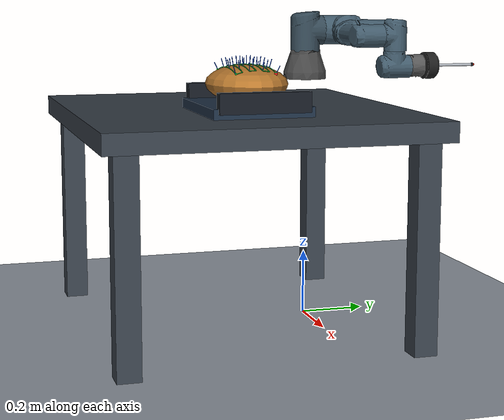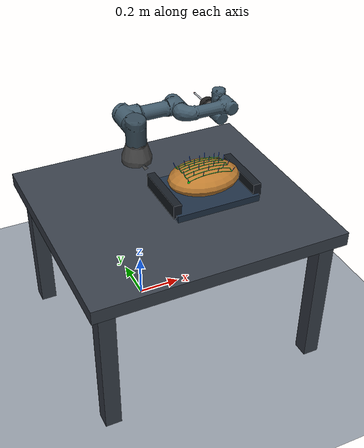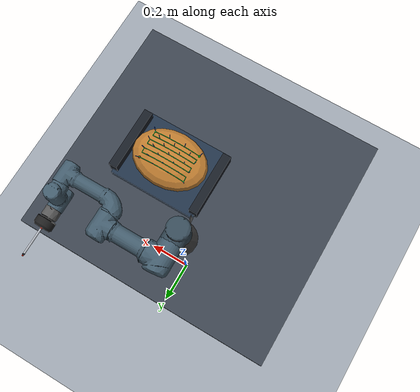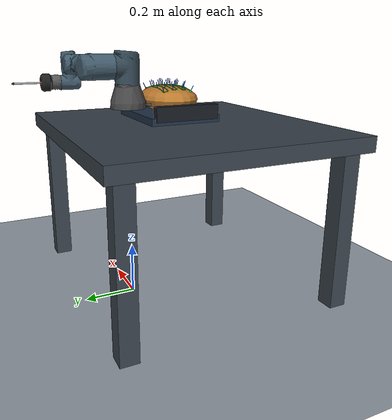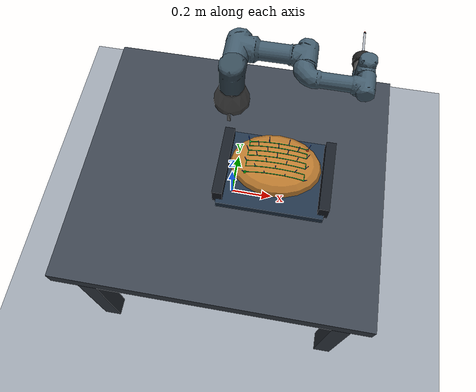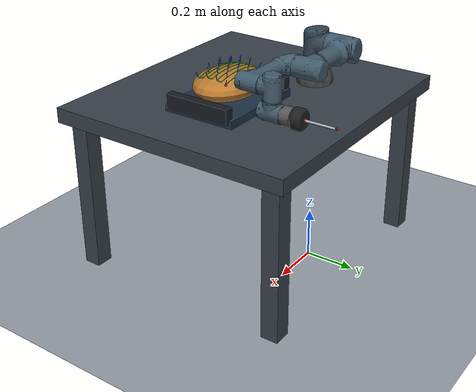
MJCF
<?xml version='1.0' encoding='utf-8'?>
<mujoco model="ur3_ft300_inspection_scan_preview">
  <!-- Green path: raster scan. Blue markers: outward surface normals. -->
  <compiler angle="radian" autolimits="true" />
  <option timestep="0.001" integrator="implicitfast" gravity="0 0 -9.81" />
  <asset>
    <mesh name="base" content_type="model/stl" file="/home/ubuntu/ur3_ft300_ws/src/ur_description/meshes/ur3/collision/base.stl" />
    <mesh name="shoulder" content_type="model/stl" file="/home/ubuntu/ur3_ft300_ws/src/ur_description/meshes/ur3/collision/shoulder.stl" />
    <mesh name="upperarm" content_type="model/stl" file="/home/ubuntu/ur3_ft300_ws/src/ur_description/meshes/ur3/collision/upperarm.stl" />
    <mesh name="forearm" content_type="model/stl" file="/home/ubuntu/ur3_ft300_ws/src/ur_description/meshes/ur3/collision/forearm.stl" />
    <mesh name="wrist1" content_type="model/stl" file="/home/ubuntu/ur3_ft300_ws/src/ur_description/meshes/ur3/collision/wrist1.stl" />
    <mesh name="wrist2" content_type="model/stl" file="/home/ubuntu/ur3_ft300_ws/src/ur_description/meshes/ur3/collision/wrist2.stl" />
    <mesh name="wrist3" content_type="model/stl" file="/home/ubuntu/ur3_ft300_ws/src/ur_description/meshes/ur3/collision/wrist3.stl" />
    <mesh name="robotiq_ft300" content_type="model/stl" file="/home/ubuntu/ur3_ft300_ws/install/robotiq_ft_sensor_description/share/robotiq_ft_sensor_description/meshes/collision/robotiq_ft300.STL" />
    <mesh name="robotiq_ft300-G-062-COUPLING_G-50-4M6-1D6_20181119" content_type="model/stl" file="/home/ubuntu/ur3_ft300_ws/install/robotiq_ft_sensor_description/share/robotiq_ft_sensor_description/meshes/collision/mountings/robotiq_ft300-G-062-COUPLING_G-50-4M6-1D6_20181119.STL" />
    <material name="ur_base_gray" rgba="0.2688 0.2688 0.2688 1" specular="0.25" shininess="0.35" />
    <material name="ur_shoulder_blue" rgba="0.200704 0.278016 0.32768 1" specular="0.25" shininess="0.35" />
    <material name="ur_blue" rgba="0.25088 0.34752 0.4096 1" specular="0.3" shininess="0.4" />
    <material name="ur_metal_gray" rgba="0.335872 0.335872 0.335872 1" specular="0.35" shininess="0.45" />
    <material name="inspection_probe_metal" rgba="0.70 0.72 0.75 1" specular="0.55" shininess="0.65" />
    <material name="inspection_tip_dark" rgba="0.10 0.12 0.14 1" specular="0.35" shininess="0.45" />
    <texture name="workcell_skybox" type="skybox" builtin="gradient" rgb1="0.92 0.95 1.00" rgb2="0.45 0.56 0.72" width="512" height="3072" />
    <material name="floor_mat" rgba="0.58 0.61 0.65 1" specular="0.10" shininess="0.15" />
    <material name="table_mat" rgba="0.22 0.25 0.29 1" specular="0.35" shininess="0.45" />
    <material name="fixture_mat" rgba="0.12 0.19 0.27 1" specular="0.45" shininess="0.55" />
    <material name="workpiece_mat" rgba="0.72 0.47 0.18 1" specular="0.45" shininess="0.50" />
    <material name="clamp_mat" rgba="0.09 0.11 0.14 1" specular="0.25" shininess="0.30" />
  </asset>
  <worldbody>
    <body name="base_link" pos="0 0 0.76">
      <body name="base_link_inertia" quat="0 0 0 1">
        <inertial pos="0 0 0" quat="0.5 0.5 -0.5 0.5" mass="2" diaginertia="0.005625 0.00305317 0.00305317" />
        <geom quat="0 0 0 1" type="mesh" mesh="base" friction="0.8 0.01 0.001" material="ur_base_gray" />
        <body name="shoulder_link" pos="0 0 0.1519">
          <inertial pos="0 0 -0.02" mass="2" diaginertia="0.00809317 0.00809317 0.005625" />
          <joint name="shoulder_pan_joint" range="-6.28319 6.28319" actuatorfrcrange="-56 56" damping="0.15" armature="0.01" />
          <geom quat="0 0 0 1" type="mesh" mesh="shoulder" friction="0.8 0.01 0.001" material="ur_shoulder_blue" />
          <body name="upper_arm_link" quat="0.707107 0.707107 0 0">
            <inertial pos="-0.11365 0 0.1157" mass="3.42" diaginertia="0.0217285 0.0217285 0.00961875" />
            <joint name="shoulder_lift_joint" range="-6.28319 6.28319" actuatorfrcrange="-56 56" damping="0.15" armature="0.01" />
            <geom pos="0 0 0.1198" quat="0.5 0.5 -0.5 -0.5" type="mesh" mesh="upperarm" friction="0.8 0.01 0.001" material="ur_blue" />
            <body name="forearm_link" pos="-0.24365 0 0">
              <inertial pos="-0.16325 0 0.0238" mass="1.26" diaginertia="0.00654681 0.00654681 0.00354375" />
              <joint name="elbow_joint" range="-3.14159 3.14159" actuatorfrcrange="-28 28" damping="0.15" armature="0.01" />
              <geom pos="0 0 0.0275" quat="0.5 0.5 -0.5 -0.5" type="mesh" mesh="forearm" friction="0.8 0.01 0.001" material="ur_blue" />
              <body name="wrist_1_link" pos="-0.21325 0 0.11235">
                <inertial pos="0 -0.01 0" quat="0.5 0.5 -0.5 0.5" mass="0.8" diaginertia="0.00225 0.00161064 0.00161064" />
                <joint name="wrist_1_joint" range="-6.28319 6.28319" actuatorfrcrange="-12 12" damping="0.08" armature="0.001" />
                <geom pos="0 0 -0.085" quat="0.707107 0.707107 0 0" type="mesh" mesh="wrist1" friction="0.8 0.01 0.001" material="ur_blue" />
                <body name="wrist_2_link" pos="0 -0.08535 -1.75056e-11" quat="0.707107 0.707107 0 0">
                  <inertial pos="0 0.01 0" quat="0.5 0.5 -0.5 0.5" mass="0.8" diaginertia="0.00225 0.00157217 0.00157217" />
                  <joint name="wrist_2_joint" range="-6.28319 6.28319" actuatorfrcrange="-12 12" damping="0.08" armature="0.001" />
                  <geom pos="0 0 -0.083" quat="1 0 0 0" type="mesh" mesh="wrist2" friction="0.8 0.01 0.001" material="ur_blue" />
                  <body name="wrist_3_link" pos="0 0.0819 -1.6798e-11" quat="0.707107 -0.707107 0 0">
                    <inertial pos="0 0 -0.02" quat="0.5 0.5 -0.5 0.5" mass="0.35" diaginertia="0.0001792 0.000136267 0.000136267" />
                    <joint name="wrist_3_joint" actuatorfrcrange="-12 12" damping="0.08" armature="0.001" />
                    <geom pos="0 -0.002 -0.082" quat="0.707107 0.707107 0 0" type="mesh" mesh="wrist3" friction="0.8 0.01 0.001" material="ur_metal_gray" />
                    <body name="ft_frame" quat="0 1 0 0" />
                    <body name="flange" quat="0.5 -0.5 -0.5 -0.5">
                      <body name="tool0" quat="0.5 0.5 0.5 0.5">
                        <body name="ft300_mounting_plate">
                          <geom type="mesh" rgba="0.12 0.12 0.12 1" mesh="robotiq_ft300-G-062-COUPLING_G-50-4M6-1D6_20181119" friction="0.8 0.01 0.001" />
                          <body name="ft300_sensor" pos="0 0 0.0415" quat="0 0 1 0">
                            <inertial pos="0 0 -0.017" quat="0.709662 -0.000475378 -0.0158879 0.704363" mass="0.3" diaginertia="0.000265022 0.000262023 0.000218955" />
                            <geom type="mesh" rgba="0.12 0.12 0.12 1" mesh="robotiq_ft300" friction="0.8 0.01 0.001" />
                            <body name="robotiq_ft_frame_id" quat="0 0.707107 0.707107 0">
                              <site name="ft300_site" pos="0 0 0" size="0.006" rgba="1 0.2 0.1 0.8" />
                              <body name="inspection_probe">
                                <inertial pos="0 0 0.067083333333333342" mass="0.12" diaginertia="0.0001659125 0.0001659125 9.9999999999999995e-07" />
                                <geom name="inspection_probe_shaft" type="cylinder" size="0.0040000000000000001 0.057499999999999996" pos="0 0 0.057499999999999996" material="inspection_probe_metal" contype="0" conaffinity="0" />
                                <geom name="inspection_probe_tip_collision" type="sphere" size="0.0050000000000000001" pos="0 0 0.11499999999999999" material="inspection_tip_dark" friction="0.45 0.01 0.001" solref="-2500 -35" />
                                <body name="inspection_tip" pos="0 0 0.12">
                                  <site name="inspection_tip_site" pos="0 0 0" size="0.0035" rgba="1 0.15 0.05 0.9" />
                                </body>
                              </body>
                            </body>
                          </body>
                        </body>
                      </body>
                    </body>
                  </body>
                </body>
              </body>
            </body>
          </body>
        </body>
      </body>
      <body name="base" quat="0 0 0 1" />
    </body>
    <geom name="factory_floor" type="plane" size="3 3 0.1" pos="0 0 0" material="floor_mat" friction="0.9 0.01 0.001" />
    <light name="key_light" pos="0.30 -0.30 2.40" dir="-0.10 0.05 -1" directional="true" diffuse="0.90 0.90 0.90" specular="0.25 0.25 0.25" />
    <light name="fill_light" pos="-1.20 0.40 1.60" dir="0.60 -0.20 -0.70" directional="true" diffuse="0.45 0.48 0.55" specular="0.10 0.10 0.12" />
    <body name="inspection_workbench">
      <geom name="table_top" type="box" pos="0.050000 -0.250000 0.650000" size="0.550000 0.500000 0.030000" material="table_mat" friction="0.9 0.01 0.001" />
      <geom name="table_leg_1" type="box" pos="0.530000 0.180000 0.310000" size="0.035000 0.035000 0.310000" material="table_mat" friction="0.9 0.01 0.001" />
      <geom name="table_leg_2" type="box" pos="0.530000 -0.680000 0.310000" size="0.035000 0.035000 0.310000" material="table_mat" friction="0.9 0.01 0.001" />
      <geom name="table_leg_3" type="box" pos="-0.430000 0.180000 0.310000" size="0.035000 0.035000 0.310000" material="table_mat" friction="0.9 0.01 0.001" />
      <geom name="table_leg_4" type="box" pos="-0.430000 -0.680000 0.310000" size="0.035000 0.035000 0.310000" material="table_mat" friction="0.9 0.01 0.001" />
      <geom name="fixture_base" type="box" pos="0.200000 -0.250000 0.695000" size="0.190000 0.150000 0.015000" material="fixture_mat" friction="0.8 0.01 0.001" />
      <geom name="fixture_clamp_left" type="box" pos="0.015000 -0.250000 0.725000" size="0.018 0.135 0.030" material="clamp_mat" friction="0.8 0.01 0.001" />
      <geom name="fixture_clamp_right" type="box" pos="0.385000 -0.250000 0.725000" size="0.018 0.135 0.030" material="clamp_mat" friction="0.8 0.01 0.001" />
      <geom name="inspection_workpiece" type="ellipsoid" pos="0.200000 -0.250000 0.765000" size="0.160000 0.120000 0.055000" material="workpiece_mat" friction="0.30 0.01 0.001" solref="-2500 -35" />
      <site name="scan_corner_1" type="sphere" pos="0.100000 -0.310000 0.800971" size="0.003" rgba="0.10 0.85 0.25 0.95" />
      <site name="scan_corner_2" type="sphere" pos="0.100000 -0.190000 0.800971" size="0.003" rgba="0.10 0.85 0.25 0.95" />
      <site name="scan_corner_3" type="sphere" pos="0.300000 -0.310000 0.800971" size="0.003" rgba="0.10 0.85 0.25 0.95" />
      <site name="scan_corner_4" type="sphere" pos="0.300000 -0.190000 0.800971" size="0.003" rgba="0.10 0.85 0.25 0.95" />
    </body>
    <body name="scan_path_preview">
      <geom name="scan_path_segment_0000" type="capsule" fromto="0.09952384 -0.31050791 0.79929999 0.10792092 -0.31047990 0.80207895" size="0.0012" rgba="0.05 0.85 0.25 0.95" contype="0" conaffinity="0" />
      <geom name="scan_path_segment_0001" type="capsule" fromto="0.10792092 -0.31047990 0.80207895 0.11630885 -0.31045801 0.80443760" size="0.0012" rgba="0.05 0.85 0.25 0.95" contype="0" conaffinity="0" />
      <geom name="scan_path_segment_0002" type="capsule" fromto="0.11630885 -0.31045801 0.80443760 0.12469022 -0.31044058 0.80645091" size="0.0012" rgba="0.05 0.85 0.25 0.95" contype="0" conaffinity="0" />
      <geom name="scan_path_segment_0003" type="capsule" fromto="0.12469022 -0.31044058 0.80645091 0.13306673 -0.31042656 0.80816930" size="0.0012" rgba="0.05 0.85 0.25 0.95" contype="0" conaffinity="0" />
      <geom name="scan_path_segment_0004" type="capsule" fromto="0.13306673 -0.31042656 0.80816930 0.14143958 -0.31041524 0.80962829" size="0.0012" rgba="0.05 0.85 0.25 0.95" contype="0" conaffinity="0" />
      <geom name="scan_path_segment_0005" type="capsule" fromto="0.14143958 -0.31041524 0.80962829 0.14980963 -0.31040613 0.81085366" size="0.0012" rgba="0.05 0.85 0.25 0.95" contype="0" conaffinity="0" />
      <geom name="scan_path_segment_0006" type="capsule" fromto="0.14980963 -0.31040613 0.81085366 0.15817752 -0.31039887 0.81186449" size="0.0012" rgba="0.05 0.85 0.25 0.95" contype="0" conaffinity="0" />
      <geom name="scan_path_segment_0007" type="capsule" fromto="0.15817752 -0.31039887 0.81186449 0.16654379 -0.31039321 0.81267495" size="0.0012" rgba="0.05 0.85 0.25 0.95" contype="0" conaffinity="0" />
      <geom name="scan_path_segment_0008" type="capsule" fromto="0.16654379 -0.31039321 0.81267495 0.17490883 -0.31038897 0.81329555" size="0.0012" rgba="0.05 0.85 0.25 0.95" contype="0" conaffinity="0" />
      <geom name="scan_path_segment_0009" type="capsule" fromto="0.17490883 -0.31038897 0.81329555 0.18327302 -0.31038603 0.81373381" size="0.0012" rgba="0.05 0.85 0.25 0.95" contype="0" conaffinity="0" />
      <geom name="scan_path_segment_0010" type="capsule" fromto="0.18327302 -0.31038603 0.81373381 0.19163664 -0.31038429 0.81399481" size="0.0012" rgba="0.05 0.85 0.25 0.95" contype="0" conaffinity="0" />
      <geom name="scan_path_segment_0011" type="capsule" fromto="0.19163664 -0.31038429 0.81399481 0.20000000 -0.31038372 0.81408149" size="0.0012" rgba="0.05 0.85 0.25 0.95" contype="0" conaffinity="0" />
      <geom name="scan_path_segment_0012" type="capsule" fromto="0.20000000 -0.31038372 0.81408149 0.20836336 -0.31038429 0.81399481" size="0.0012" rgba="0.05 0.85 0.25 0.95" contype="0" conaffinity="0" />
      <geom name="scan_path_segment_0013" type="capsule" fromto="0.20836336 -0.31038429 0.81399481 0.21672698 -0.31038603 0.81373381" size="0.0012" rgba="0.05 0.85 0.25 0.95" contype="0" conaffinity="0" />
      <geom name="scan_path_segment_0014" type="capsule" fromto="0.21672698 -0.31038603 0.81373381 0.22509117 -0.31038897 0.81329555" size="0.0012" rgba="0.05 0.85 0.25 0.95" contype="0" conaffinity="0" />
      <geom name="scan_path_segment_0015" type="capsule" fromto="0.22509117 -0.31038897 0.81329555 0.23345621 -0.31039321 0.81267495" size="0.0012" rgba="0.05 0.85 0.25 0.95" contype="0" conaffinity="0" />
      <geom name="scan_path_segment_0016" type="capsule" fromto="0.23345621 -0.31039321 0.81267495 0.24182248 -0.31039887 0.81186449" size="0.0012" rgba="0.05 0.85 0.25 0.95" contype="0" conaffinity="0" />
      <geom name="scan_path_segment_0017" type="capsule" fromto="0.24182248 -0.31039887 0.81186449 0.25019037 -0.31040613 0.81085366" size="0.0012" rgba="0.05 0.85 0.25 0.95" contype="0" conaffinity="0" />
      <geom name="scan_path_segment_0018" type="capsule" fromto="0.25019037 -0.31040613 0.81085366 0.25856042 -0.31041524 0.80962829" size="0.0012" rgba="0.05 0.85 0.25 0.95" contype="0" conaffinity="0" />
      <geom name="scan_path_segment_0019" type="capsule" fromto="0.25856042 -0.31041524 0.80962829 0.26693327 -0.31042656 0.80816930" size="0.0012" rgba="0.05 0.85 0.25 0.95" contype="0" conaffinity="0" />
      <geom name="scan_path_segment_0020" type="capsule" fromto="0.26693327 -0.31042656 0.80816930 0.27530978 -0.31044058 0.80645091" size="0.0012" rgba="0.05 0.85 0.25 0.95" contype="0" conaffinity="0" />
      <geom name="scan_path_segment_0021" type="capsule" fromto="0.27530978 -0.31044058 0.80645091 0.28369115 -0.31045801 0.80443760" size="0.0012" rgba="0.05 0.85 0.25 0.95" contype="0" conaffinity="0" />
      <geom name="scan_path_segment_0022" type="capsule" fromto="0.28369115 -0.31045801 0.80443760 0.29207908 -0.31047990 0.80207895" size="0.0012" rgba="0.05 0.85 0.25 0.95" contype="0" conaffinity="0" />
      <geom name="scan_path_segment_0023" type="capsule" fromto="0.29207908 -0.31047990 0.80207895 0.30047616 -0.31050791 0.79929999" size="0.0012" rgba="0.05 0.85 0.25 0.95" contype="0" conaffinity="0" />
      <geom name="scan_path_segment_0024" type="capsule" fromto="0.30047616 -0.31050791 0.79929999 0.30046057 -0.30545034 0.80110949" size="0.0012" rgba="0.05 0.85 0.25 0.95" contype="0" conaffinity="0" />
      <geom name="scan_path_segment_0025" type="capsule" fromto="0.30046057 -0.30545034 0.80110949 0.30044759 -0.30039786 0.80268210" size="0.0012" rgba="0.05 0.85 0.25 0.95" contype="0" conaffinity="0" />
      <geom name="scan_path_segment_0026" type="capsule" fromto="0.30044759 -0.30039786 0.80268210 0.30043675 -0.29534940 0.80404775" size="0.0012" rgba="0.05 0.85 0.25 0.95" contype="0" conaffinity="0" />
      <geom name="scan_path_segment_0027" type="capsule" fromto="0.30043675 -0.29534940 0.80404775 0.30042769 -0.29030414 0.80522849" size="0.0012" rgba="0.05 0.85 0.25 0.95" contype="0" conaffinity="0" />
      <geom name="scan_path_segment_0028" type="capsule" fromto="0.30042769 -0.29030414 0.80522849 0.29204100 -0.29029039 0.80760553" size="0.0012" rgba="0.05 0.85 0.25 0.95" contype="0" conaffinity="0" />
      <geom name="scan_path_segment_0029" type="capsule" fromto="0.29204100 -0.29029039 0.80760553 0.28366069 -0.29027934 0.80966084" size="0.0012" rgba="0.05 0.85 0.25 0.95" contype="0" conaffinity="0" />
      <geom name="scan_path_segment_0030" type="capsule" fromto="0.28366069 -0.29027934 0.80966084 0.27528515 -0.29027036 0.81143891" size="0.0012" rgba="0.05 0.85 0.25 0.95" contype="0" conaffinity="0" />
      <geom name="scan_path_segment_0031" type="capsule" fromto="0.27528515 -0.29027036 0.81143891 0.26691325 -0.29026302 0.81297178" size="0.0012" rgba="0.05 0.85 0.25 0.95" contype="0" conaffinity="0" />
      <geom name="scan_path_segment_0032" type="capsule" fromto="0.26691325 -0.29026302 0.81297178 0.25854417 -0.29025702 0.81428323" size="0.0012" rgba="0.05 0.85 0.25 0.95" contype="0" conaffinity="0" />
      <geom name="scan_path_segment_0033" type="capsule" fromto="0.25854417 -0.29025702 0.81428323 0.25017728 -0.29025213 0.81539118" size="0.0012" rgba="0.05 0.85 0.25 0.95" contype="0" conaffinity="0" />
      <geom name="scan_path_segment_0034" type="capsule" fromto="0.25017728 -0.29025213 0.81539118 0.24181210 -0.29024821 0.81630932" size="0.0012" rgba="0.05 0.85 0.25 0.95" contype="0" conaffinity="0" />
      <geom name="scan_path_segment_0035" type="capsule" fromto="0.24181210 -0.29024821 0.81630932 0.23344824 -0.29024514 0.81704804" size="0.0012" rgba="0.05 0.85 0.25 0.95" contype="0" conaffinity="0" />
      <geom name="scan_path_segment_0036" type="capsule" fromto="0.23344824 -0.29024514 0.81704804 0.22508537 -0.29024282 0.81761518" size="0.0012" rgba="0.05 0.85 0.25 0.95" contype="0" conaffinity="0" />
      <geom name="scan_path_segment_0037" type="capsule" fromto="0.22508537 -0.29024282 0.81761518 0.21672320 -0.29024121 0.81801643" size="0.0012" rgba="0.05 0.85 0.25 0.95" contype="0" conaffinity="0" />
      <geom name="scan_path_segment_0038" type="capsule" fromto="0.21672320 -0.29024121 0.81801643 0.20836149 -0.29024025 0.81825568" size="0.0012" rgba="0.05 0.85 0.25 0.95" contype="0" conaffinity="0" />
      <geom name="scan_path_segment_0039" type="capsule" fromto="0.20836149 -0.29024025 0.81825568 0.20000000 -0.29023994 0.81833518" size="0.0012" rgba="0.05 0.85 0.25 0.95" contype="0" conaffinity="0" />
      <geom name="scan_path_segment_0040" type="capsule" fromto="0.20000000 -0.29023994 0.81833518 0.19163851 -0.29024025 0.81825568" size="0.0012" rgba="0.05 0.85 0.25 0.95" contype="0" conaffinity="0" />
      <geom name="scan_path_segment_0041" type="capsule" fromto="0.19163851 -0.29024025 0.81825568 0.18327680 -0.29024121 0.81801643" size="0.0012" rgba="0.05 0.85 0.25 0.95" contype="0" conaffinity="0" />
      <geom name="scan_path_segment_0042" type="capsule" fromto="0.18327680 -0.29024121 0.81801643 0.17491463 -0.29024282 0.81761518" size="0.0012" rgba="0.05 0.85 0.25 0.95" contype="0" conaffinity="0" />
      <geom name="scan_path_segment_0043" type="capsule" fromto="0.17491463 -0.29024282 0.81761518 0.16655176 -0.29024514 0.81704804" size="0.0012" rgba="0.05 0.85 0.25 0.95" contype="0" conaffinity="0" />
      <geom name="scan_path_segment_0044" type="capsule" fromto="0.16655176 -0.29024514 0.81704804 0.15818790 -0.29024821 0.81630932" size="0.0012" rgba="0.05 0.85 0.25 0.95" contype="0" conaffinity="0" />
      <geom name="scan_path_segment_0045" type="capsule" fromto="0.15818790 -0.29024821 0.81630932 0.14982272 -0.29025213 0.81539118" size="0.0012" rgba="0.05 0.85 0.25 0.95" contype="0" conaffinity="0" />
      <geom name="scan_path_segment_0046" type="capsule" fromto="0.14982272 -0.29025213 0.81539118 0.14145583 -0.29025702 0.81428323" size="0.0012" rgba="0.05 0.85 0.25 0.95" contype="0" conaffinity="0" />
      <geom name="scan_path_segment_0047" type="capsule" fromto="0.14145583 -0.29025702 0.81428323 0.13308675 -0.29026302 0.81297178" size="0.0012" rgba="0.05 0.85 0.25 0.95" contype="0" conaffinity="0" />
      <geom name="scan_path_segment_0048" type="capsule" fromto="0.13308675 -0.29026302 0.81297178 0.12471485 -0.29027036 0.81143891" size="0.0012" rgba="0.05 0.85 0.25 0.95" contype="0" conaffinity="0" />
      <geom name="scan_path_segment_0049" type="capsule" fromto="0.12471485 -0.29027036 0.81143891 0.11633931 -0.29027934 0.80966084" size="0.0012" rgba="0.05 0.85 0.25 0.95" contype="0" conaffinity="0" />
      <geom name="scan_path_segment_0050" type="capsule" fromto="0.11633931 -0.29027934 0.80966084 0.10795900 -0.29029039 0.80760553" size="0.0012" rgba="0.05 0.85 0.25 0.95" contype="0" conaffinity="0" />
      <geom name="scan_path_segment_0051" type="capsule" fromto="0.10795900 -0.29029039 0.80760553 0.09957231 -0.29030414 0.80522849" size="0.0012" rgba="0.05 0.85 0.25 0.95" contype="0" conaffinity="0" />
      <geom name="scan_path_segment_0052" type="capsule" fromto="0.09957231 -0.29030414 0.80522849 0.09957985 -0.28526143 0.80624095" size="0.0012" rgba="0.05 0.85 0.25 0.95" contype="0" conaffinity="0" />
      <geom name="scan_path_segment_0053" type="capsule" fromto="0.09957985 -0.28526143 0.80624095 0.09958608 -0.28022076 0.80709781" size="0.0012" rgba="0.05 0.85 0.25 0.95" contype="0" conaffinity="0" />
      <geom name="scan_path_segment_0054" type="capsule" fromto="0.09958608 -0.28022076 0.80709781 0.09959113 -0.27518172 0.80780883" size="0.0012" rgba="0.05 0.85 0.25 0.95" contype="0" conaffinity="0" />
      <geom name="scan_path_segment_0055" type="capsule" fromto="0.09959113 -0.27518172 0.80780883 0.09959514 -0.27014395 0.80838152" size="0.0012" rgba="0.05 0.85 0.25 0.95" contype="0" conaffinity="0" />
      <geom name="scan_path_segment_0056" type="capsule" fromto="0.09959514 -0.27014395 0.80838152 0.10797734 -0.27013808 0.81058749" size="0.0012" rgba="0.05 0.85 0.25 0.95" contype="0" conaffinity="0" />
      <geom name="scan_path_segment_0057" type="capsule" fromto="0.10797734 -0.27013808 0.81058749 0.11635423 -0.27013330 0.81250871" size="0.0012" rgba="0.05 0.85 0.25 0.95" contype="0" conaffinity="0" />
      <geom name="scan_path_segment_0058" type="capsule" fromto="0.11635423 -0.27013330 0.81250871 0.12472708 -0.27012938 0.81417986" size="0.0012" rgba="0.05 0.85 0.25 0.95" contype="0" conaffinity="0" />
      <geom name="scan_path_segment_0059" type="capsule" fromto="0.12472708 -0.27012938 0.81417986 0.13309679 -0.27012616 0.81562662" size="0.0012" rgba="0.05 0.85 0.25 0.95" contype="0" conaffinity="0" />
      <geom name="scan_path_segment_0060" type="capsule" fromto="0.13309679 -0.27012616 0.81562662 0.14146405 -0.27012350 0.81686847" size="0.0012" rgba="0.05 0.85 0.25 0.95" contype="0" conaffinity="0" />
      <geom name="scan_path_segment_0061" type="capsule" fromto="0.14146405 -0.27012350 0.81686847 0.14982939 -0.27012133 0.81792035" size="0.0012" rgba="0.05 0.85 0.25 0.95" contype="0" conaffinity="0" />
      <geom name="scan_path_segment_0062" type="capsule" fromto="0.14982939 -0.27012133 0.81792035 0.15819321 -0.27011957 0.81879377" size="0.0012" rgba="0.05 0.85 0.25 0.95" contype="0" conaffinity="0" />
      <geom name="scan_path_segment_0063" type="capsule" fromto="0.15819321 -0.27011957 0.81879377 0.16655586 -0.27011820 0.81949763" size="0.0012" rgba="0.05 0.85 0.25 0.95" contype="0" conaffinity="0" />
      <geom name="scan_path_segment_0064" type="capsule" fromto="0.16655586 -0.27011820 0.81949763 0.17491762 -0.27011716 0.82003864" size="0.0012" rgba="0.05 0.85 0.25 0.95" contype="0" conaffinity="0" />
      <geom name="scan_path_segment_0065" type="capsule" fromto="0.17491762 -0.27011716 0.82003864 0.18327876 -0.27011643 0.82042173" size="0.0012" rgba="0.05 0.85 0.25 0.95" contype="0" conaffinity="0" />
      <geom name="scan_path_segment_0066" type="capsule" fromto="0.18327876 -0.27011643 0.82042173 0.19163948 -0.27011600 0.82065028" size="0.0012" rgba="0.05 0.85 0.25 0.95" contype="0" conaffinity="0" />
      <geom name="scan_path_segment_0067" type="capsule" fromto="0.19163948 -0.27011600 0.82065028 0.20000000 -0.27011586 0.82072625" size="0.0012" rgba="0.05 0.85 0.25 0.95" contype="0" conaffinity="0" />
      <geom name="scan_path_segment_0068" type="capsule" fromto="0.20000000 -0.27011586 0.82072625 0.20836052 -0.27011600 0.82065028" size="0.0012" rgba="0.05 0.85 0.25 0.95" contype="0" conaffinity="0" />
      <geom name="scan_path_segment_0069" type="capsule" fromto="0.20836052 -0.27011600 0.82065028 0.21672124 -0.27011643 0.82042173" size="0.0012" rgba="0.05 0.85 0.25 0.95" contype="0" conaffinity="0" />
      <geom name="scan_path_segment_0070" type="capsule" fromto="0.21672124 -0.27011643 0.82042173 0.22508238 -0.27011716 0.82003864" size="0.0012" rgba="0.05 0.85 0.25 0.95" contype="0" conaffinity="0" />
      <geom name="scan_path_segment_0071" type="capsule" fromto="0.22508238 -0.27011716 0.82003864 0.23344414 -0.27011820 0.81949763" size="0.0012" rgba="0.05 0.85 0.25 0.95" contype="0" conaffinity="0" />
      <geom name="scan_path_segment_0072" type="capsule" fromto="0.23344414 -0.27011820 0.81949763 0.24180679 -0.27011957 0.81879377" size="0.0012" rgba="0.05 0.85 0.25 0.95" contype="0" conaffinity="0" />
      <geom name="scan_path_segment_0073" type="capsule" fromto="0.24180679 -0.27011957 0.81879377 0.25017061 -0.27012133 0.81792035" size="0.0012" rgba="0.05 0.85 0.25 0.95" contype="0" conaffinity="0" />
      <geom name="scan_path_segment_0074" type="capsule" fromto="0.25017061 -0.27012133 0.81792035 0.25853595 -0.27012350 0.81686847" size="0.0012" rgba="0.05 0.85 0.25 0.95" contype="0" conaffinity="0" />
      <geom name="scan_path_segment_0075" type="capsule" fromto="0.25853595 -0.27012350 0.81686847 0.26690321 -0.27012616 0.81562662" size="0.0012" rgba="0.05 0.85 0.25 0.95" contype="0" conaffinity="0" />
      <geom name="scan_path_segment_0076" type="capsule" fromto="0.26690321 -0.27012616 0.81562662 0.27527292 -0.27012938 0.81417986" size="0.0012" rgba="0.05 0.85 0.25 0.95" contype="0" conaffinity="0" />
      <geom name="scan_path_segment_0077" type="capsule" fromto="0.27527292 -0.27012938 0.81417986 0.28364577 -0.27013330 0.81250871" size="0.0012" rgba="0.05 0.85 0.25 0.95" contype="0" conaffinity="0" />
      <geom name="scan_path_segment_0078" type="capsule" fromto="0.28364577 -0.27013330 0.81250871 0.29202266 -0.27013808 0.81058749" size="0.0012" rgba="0.05 0.85 0.25 0.95" contype="0" conaffinity="0" />
      <geom name="scan_path_segment_0079" type="capsule" fromto="0.29202266 -0.27013808 0.81058749 0.30040486 -0.27014395 0.80838152" size="0.0012" rgba="0.05 0.85 0.25 0.95" contype="0" conaffinity="0" />
      <geom name="scan_path_segment_0080" type="capsule" fromto="0.30040486 -0.27014395 0.80838152 0.30040183 -0.26510716 0.80882154" size="0.0012" rgba="0.05 0.85 0.25 0.95" contype="0" conaffinity="0" />
      <geom name="scan_path_segment_0081" type="capsule" fromto="0.30040183 -0.26510716 0.80882154 0.30039971 -0.26007106 0.80913304" size="0.0012" rgba="0.05 0.85 0.25 0.95" contype="0" conaffinity="0" />
      <geom name="scan_path_segment_0082" type="capsule" fromto="0.30039971 -0.26007106 0.80913304 0.30039845 -0.25503542 0.80931884" size="0.0012" rgba="0.05 0.85 0.25 0.95" contype="0" conaffinity="0" />
      <geom name="scan_path_segment_0083" type="capsule" fromto="0.30039845 -0.25503542 0.80931884 0.30039803 -0.25000000 0.80938059" size="0.0012" rgba="0.05 0.85 0.25 0.95" contype="0" conaffinity="0" />
      <geom name="scan_path_segment_0084" type="capsule" fromto="0.30039803 -0.25000000 0.80938059 0.29201712 -0.25000000 0.81153724" size="0.0012" rgba="0.05 0.85 0.25 0.95" contype="0" conaffinity="0" />
      <geom name="scan_path_segment_0085" type="capsule" fromto="0.29201712 -0.25000000 0.81153724 0.28364123 -0.25000000 0.81341927" size="0.0012" rgba="0.05 0.85 0.25 0.95" contype="0" conaffinity="0" />
      <geom name="scan_path_segment_0086" type="capsule" fromto="0.28364123 -0.25000000 0.81341927 0.27526918 -0.25000000 0.81505885" size="0.0012" rgba="0.05 0.85 0.25 0.95" contype="0" conaffinity="0" />
      <geom name="scan_path_segment_0087" type="capsule" fromto="0.27526918 -0.25000000 0.81505885 0.26690012 -0.25000000 0.81647999" size="0.0012" rgba="0.05 0.85 0.25 0.95" contype="0" conaffinity="0" />
      <geom name="scan_path_segment_0088" type="capsule" fromto="0.26690012 -0.25000000 0.81647999 0.25853341 -0.25000000 0.81770099" size="0.0012" rgba="0.05 0.85 0.25 0.95" contype="0" conaffinity="0" />
      <geom name="scan_path_segment_0089" type="capsule" fromto="0.25853341 -0.25000000 0.81770099 0.25016855 -0.25000000 0.81873598" size="0.0012" rgba="0.05 0.85 0.25 0.95" contype="0" conaffinity="0" />
      <geom name="scan_path_segment_0090" type="capsule" fromto="0.25016855 -0.25000000 0.81873598 0.24180515 -0.25000000 0.81959589" size="0.0012" rgba="0.05 0.85 0.25 0.95" contype="0" conaffinity="0" />
      <geom name="scan_path_segment_0091" type="capsule" fromto="0.24180515 -0.25000000 0.81959589 0.23344287 -0.25000000 0.82028918" size="0.0012" rgba="0.05 0.85 0.25 0.95" contype="0" conaffinity="0" />
      <geom name="scan_path_segment_0092" type="capsule" fromto="0.23344287 -0.25000000 0.82028918 0.22508145 -0.25000000 0.82082225" size="0.0012" rgba="0.05 0.85 0.25 0.95" contype="0" conaffinity="0" />
      <geom name="scan_path_segment_0093" type="capsule" fromto="0.22508145 -0.25000000 0.82082225 0.21672064 -0.25000000 0.82119982" size="0.0012" rgba="0.05 0.85 0.25 0.95" contype="0" conaffinity="0" />
      <geom name="scan_path_segment_0094" type="capsule" fromto="0.21672064 -0.25000000 0.82119982 0.20836022 -0.25000000 0.82142511" size="0.0012" rgba="0.05 0.85 0.25 0.95" contype="0" conaffinity="0" />
      <geom name="scan_path_segment_0095" type="capsule" fromto="0.20836022 -0.25000000 0.82142511 0.20000000 -0.25000000 0.82150000" size="0.0012" rgba="0.05 0.85 0.25 0.95" contype="0" conaffinity="0" />
      <geom name="scan_path_segment_0096" type="capsule" fromto="0.20000000 -0.25000000 0.82150000 0.19163978 -0.25000000 0.82142511" size="0.0012" rgba="0.05 0.85 0.25 0.95" contype="0" conaffinity="0" />
      <geom name="scan_path_segment_0097" type="capsule" fromto="0.19163978 -0.25000000 0.82142511 0.18327936 -0.25000000 0.82119982" size="0.0012" rgba="0.05 0.85 0.25 0.95" contype="0" conaffinity="0" />
      <geom name="scan_path_segment_0098" type="capsule" fromto="0.18327936 -0.25000000 0.82119982 0.17491855 -0.25000000 0.82082225" size="0.0012" rgba="0.05 0.85 0.25 0.95" contype="0" conaffinity="0" />
      <geom name="scan_path_segment_0099" type="capsule" fromto="0.17491855 -0.25000000 0.82082225 0.16655713 -0.25000000 0.82028918" size="0.0012" rgba="0.05 0.85 0.25 0.95" contype="0" conaffinity="0" />
      <geom name="scan_path_segment_0100" type="capsule" fromto="0.16655713 -0.25000000 0.82028918 0.15819485 -0.25000000 0.81959589" size="0.0012" rgba="0.05 0.85 0.25 0.95" contype="0" conaffinity="0" />
      <geom name="scan_path_segment_0101" type="capsule" fromto="0.15819485 -0.25000000 0.81959589 0.14983145 -0.25000000 0.81873598" size="0.0012" rgba="0.05 0.85 0.25 0.95" contype="0" conaffinity="0" />
      <geom name="scan_path_segment_0102" type="capsule" fromto="0.14983145 -0.25000000 0.81873598 0.14146659 -0.25000000 0.81770099" size="0.0012" rgba="0.05 0.85 0.25 0.95" contype="0" conaffinity="0" />
      <geom name="scan_path_segment_0103" type="capsule" fromto="0.14146659 -0.25000000 0.81770099 0.13309988 -0.25000000 0.81647999" size="0.0012" rgba="0.05 0.85 0.25 0.95" contype="0" conaffinity="0" />
      <geom name="scan_path_segment_0104" type="capsule" fromto="0.13309988 -0.25000000 0.81647999 0.12473082 -0.25000000 0.81505885" size="0.0012" rgba="0.05 0.85 0.25 0.95" contype="0" conaffinity="0" />
      <geom name="scan_path_segment_0105" type="capsule" fromto="0.12473082 -0.25000000 0.81505885 0.11635877 -0.25000000 0.81341927" size="0.0012" rgba="0.05 0.85 0.25 0.95" contype="0" conaffinity="0" />
      <geom name="scan_path_segment_0106" type="capsule" fromto="0.11635877 -0.25000000 0.81341927 0.10798288 -0.25000000 0.81153724" size="0.0012" rgba="0.05 0.85 0.25 0.95" contype="0" conaffinity="0" />
      <geom name="scan_path_segment_0107" type="capsule" fromto="0.10798288 -0.25000000 0.81153724 0.09960197 -0.25000000 0.80938059" size="0.0012" rgba="0.05 0.85 0.25 0.95" contype="0" conaffinity="0" />
      <geom name="scan_path_segment_0108" type="capsule" fromto="0.09960197 -0.25000000 0.80938059 0.09960155 -0.24496458 0.80931884" size="0.0012" rgba="0.05 0.85 0.25 0.95" contype="0" conaffinity="0" />
      <geom name="scan_path_segment_0109" type="capsule" fromto="0.09960155 -0.24496458 0.80931884 0.09960029 -0.23992894 0.80913304" size="0.0012" rgba="0.05 0.85 0.25 0.95" contype="0" conaffinity="0" />
      <geom name="scan_path_segment_0110" type="capsule" fromto="0.09960029 -0.23992894 0.80913304 0.09959817 -0.23489284 0.80882154" size="0.0012" rgba="0.05 0.85 0.25 0.95" contype="0" conaffinity="0" />
      <geom name="scan_path_segment_0111" type="capsule" fromto="0.09959817 -0.23489284 0.80882154 0.09959514 -0.22985605 0.80838152" size="0.0012" rgba="0.05 0.85 0.25 0.95" contype="0" conaffinity="0" />
      <geom name="scan_path_segment_0112" type="capsule" fromto="0.09959514 -0.22985605 0.80838152 0.10797734 -0.22986192 0.81058749" size="0.0012" rgba="0.05 0.85 0.25 0.95" contype="0" conaffinity="0" />
      <geom name="scan_path_segment_0113" type="capsule" fromto="0.10797734 -0.22986192 0.81058749 0.11635423 -0.22986670 0.81250871" size="0.0012" rgba="0.05 0.85 0.25 0.95" contype="0" conaffinity="0" />
      <geom name="scan_path_segment_0114" type="capsule" fromto="0.11635423 -0.22986670 0.81250871 0.12472708 -0.22987062 0.81417986" size="0.0012" rgba="0.05 0.85 0.25 0.95" contype="0" conaffinity="0" />
      <geom name="scan_path_segment_0115" type="capsule" fromto="0.12472708 -0.22987062 0.81417986 0.13309679 -0.22987384 0.81562662" size="0.0012" rgba="0.05 0.85 0.25 0.95" contype="0" conaffinity="0" />
      <geom name="scan_path_segment_0116" type="capsule" fromto="0.13309679 -0.22987384 0.81562662 0.14146405 -0.22987650 0.81686847" size="0.0012" rgba="0.05 0.85 0.25 0.95" contype="0" conaffinity="0" />
      <geom name="scan_path_segment_0117" type="capsule" fromto="0.14146405 -0.22987650 0.81686847 0.14982939 -0.22987867 0.81792035" size="0.0012" rgba="0.05 0.85 0.25 0.95" contype="0" conaffinity="0" />
      <geom name="scan_path_segment_0118" type="capsule" fromto="0.14982939 -0.22987867 0.81792035 0.15819321 -0.22988043 0.81879377" size="0.0012" rgba="0.05 0.85 0.25 0.95" contype="0" conaffinity="0" />
      <geom name="scan_path_segment_0119" type="capsule" fromto="0.15819321 -0.22988043 0.81879377 0.16655586 -0.22988180 0.81949763" size="0.0012" rgba="0.05 0.85 0.25 0.95" contype="0" conaffinity="0" />
      <geom name="scan_path_segment_0120" type="capsule" fromto="0.16655586 -0.22988180 0.81949763 0.17491762 -0.22988284 0.82003864" size="0.0012" rgba="0.05 0.85 0.25 0.95" contype="0" conaffinity="0" />
      <geom name="scan_path_segment_0121" type="capsule" fromto="0.17491762 -0.22988284 0.82003864 0.18327876 -0.22988357 0.82042173" size="0.0012" rgba="0.05 0.85 0.25 0.95" contype="0" conaffinity="0" />
      <geom name="scan_path_segment_0122" type="capsule" fromto="0.18327876 -0.22988357 0.82042173 0.19163948 -0.22988400 0.82065028" size="0.0012" rgba="0.05 0.85 0.25 0.95" contype="0" conaffinity="0" />
      <geom name="scan_path_segment_0123" type="capsule" fromto="0.19163948 -0.22988400 0.82065028 0.20000000 -0.22988414 0.82072625" size="0.0012" rgba="0.05 0.85 0.25 0.95" contype="0" conaffinity="0" />
      <geom name="scan_path_segment_0124" type="capsule" fromto="0.20000000 -0.22988414 0.82072625 0.20836052 -0.22988400 0.82065028" size="0.0012" rgba="0.05 0.85 0.25 0.95" contype="0" conaffinity="0" />
      <geom name="scan_path_segment_0125" type="capsule" fromto="0.20836052 -0.22988400 0.82065028 0.21672124 -0.22988357 0.82042173" size="0.0012" rgba="0.05 0.85 0.25 0.95" contype="0" conaffinity="0" />
      <geom name="scan_path_segment_0126" type="capsule" fromto="0.21672124 -0.22988357 0.82042173 0.22508238 -0.22988284 0.82003864" size="0.0012" rgba="0.05 0.85 0.25 0.95" contype="0" conaffinity="0" />
      <geom name="scan_path_segment_0127" type="capsule" fromto="0.22508238 -0.22988284 0.82003864 0.23344414 -0.22988180 0.81949763" size="0.0012" rgba="0.05 0.85 0.25 0.95" contype="0" conaffinity="0" />
      <geom name="scan_path_segment_0128" type="capsule" fromto="0.23344414 -0.22988180 0.81949763 0.24180679 -0.22988043 0.81879377" size="0.0012" rgba="0.05 0.85 0.25 0.95" contype="0" conaffinity="0" />
      <geom name="scan_path_segment_0129" type="capsule" fromto="0.24180679 -0.22988043 0.81879377 0.25017061 -0.22987867 0.81792035" size="0.0012" rgba="0.05 0.85 0.25 0.95" contype="0" conaffinity="0" />
      <geom name="scan_path_segment_0130" type="capsule" fromto="0.25017061 -0.22987867 0.81792035 0.25853595 -0.22987650 0.81686847" size="0.0012" rgba="0.05 0.85 0.25 0.95" contype="0" conaffinity="0" />
      <geom name="scan_path_segment_0131" type="capsule" fromto="0.25853595 -0.22987650 0.81686847 0.26690321 -0.22987384 0.81562662" size="0.0012" rgba="0.05 0.85 0.25 0.95" contype="0" conaffinity="0" />
      <geom name="scan_path_segment_0132" type="capsule" fromto="0.26690321 -0.22987384 0.81562662 0.27527292 -0.22987062 0.81417986" size="0.0012" rgba="0.05 0.85 0.25 0.95" contype="0" conaffinity="0" />
      <geom name="scan_path_segment_0133" type="capsule" fromto="0.27527292 -0.22987062 0.81417986 0.28364577 -0.22986670 0.81250871" size="0.0012" rgba="0.05 0.85 0.25 0.95" contype="0" conaffinity="0" />
      <geom name="scan_path_segment_0134" type="capsule" fromto="0.28364577 -0.22986670 0.81250871 0.29202266 -0.22986192 0.81058749" size="0.0012" rgba="0.05 0.85 0.25 0.95" contype="0" conaffinity="0" />
      <geom name="scan_path_segment_0135" type="capsule" fromto="0.29202266 -0.22986192 0.81058749 0.30040486 -0.22985605 0.80838152" size="0.0012" rgba="0.05 0.85 0.25 0.95" contype="0" conaffinity="0" />
      <geom name="scan_path_segment_0136" type="capsule" fromto="0.30040486 -0.22985605 0.80838152 0.30040887 -0.22481828 0.80780883" size="0.0012" rgba="0.05 0.85 0.25 0.95" contype="0" conaffinity="0" />
      <geom name="scan_path_segment_0137" type="capsule" fromto="0.30040887 -0.22481828 0.80780883 0.30041392 -0.21977924 0.80709781" size="0.0012" rgba="0.05 0.85 0.25 0.95" contype="0" conaffinity="0" />
      <geom name="scan_path_segment_0138" type="capsule" fromto="0.30041392 -0.21977924 0.80709781 0.30042015 -0.21473857 0.80624095" size="0.0012" rgba="0.05 0.85 0.25 0.95" contype="0" conaffinity="0" />
      <geom name="scan_path_segment_0139" type="capsule" fromto="0.30042015 -0.21473857 0.80624095 0.30042769 -0.20969586 0.80522849" size="0.0012" rgba="0.05 0.85 0.25 0.95" contype="0" conaffinity="0" />
      <geom name="scan_path_segment_0140" type="capsule" fromto="0.30042769 -0.20969586 0.80522849 0.29204100 -0.20970961 0.80760553" size="0.0012" rgba="0.05 0.85 0.25 0.95" contype="0" conaffinity="0" />
      <geom name="scan_path_segment_0141" type="capsule" fromto="0.29204100 -0.20970961 0.80760553 0.28366069 -0.20972066 0.80966084" size="0.0012" rgba="0.05 0.85 0.25 0.95" contype="0" conaffinity="0" />
      <geom name="scan_path_segment_0142" type="capsule" fromto="0.28366069 -0.20972066 0.80966084 0.27528515 -0.20972964 0.81143891" size="0.0012" rgba="0.05 0.85 0.25 0.95" contype="0" conaffinity="0" />
      <geom name="scan_path_segment_0143" type="capsule" fromto="0.27528515 -0.20972964 0.81143891 0.26691325 -0.20973698 0.81297178" size="0.0012" rgba="0.05 0.85 0.25 0.95" contype="0" conaffinity="0" />
      <geom name="scan_path_segment_0144" type="capsule" fromto="0.26691325 -0.20973698 0.81297178 0.25854417 -0.20974298 0.81428323" size="0.0012" rgba="0.05 0.85 0.25 0.95" contype="0" conaffinity="0" />
      <geom name="scan_path_segment_0145" type="capsule" fromto="0.25854417 -0.20974298 0.81428323 0.25017728 -0.20974787 0.81539118" size="0.0012" rgba="0.05 0.85 0.25 0.95" contype="0" conaffinity="0" />
      <geom name="scan_path_segment_0146" type="capsule" fromto="0.25017728 -0.20974787 0.81539118 0.24181210 -0.20975179 0.81630932" size="0.0012" rgba="0.05 0.85 0.25 0.95" contype="0" conaffinity="0" />
      <geom name="scan_path_segment_0147" type="capsule" fromto="0.24181210 -0.20975179 0.81630932 0.23344824 -0.20975486 0.81704804" size="0.0012" rgba="0.05 0.85 0.25 0.95" contype="0" conaffinity="0" />
      <geom name="scan_path_segment_0148" type="capsule" fromto="0.23344824 -0.20975486 0.81704804 0.22508537 -0.20975718 0.81761518" size="0.0012" rgba="0.05 0.85 0.25 0.95" contype="0" conaffinity="0" />
      <geom name="scan_path_segment_0149" type="capsule" fromto="0.22508537 -0.20975718 0.81761518 0.21672320 -0.20975879 0.81801643" size="0.0012" rgba="0.05 0.85 0.25 0.95" contype="0" conaffinity="0" />
      <geom name="scan_path_segment_0150" type="capsule" fromto="0.21672320 -0.20975879 0.81801643 0.20836149 -0.20975975 0.81825568" size="0.0012" rgba="0.05 0.85 0.25 0.95" contype="0" conaffinity="0" />
      <geom name="scan_path_segment_0151" type="capsule" fromto="0.20836149 -0.20975975 0.81825568 0.20000000 -0.20976006 0.81833518" size="0.0012" rgba="0.05 0.85 0.25 0.95" contype="0" conaffinity="0" />
      <geom name="scan_path_segment_0152" type="capsule" fromto="0.20000000 -0.20976006 0.81833518 0.19163851 -0.20975975 0.81825568" size="0.0012" rgba="0.05 0.85 0.25 0.95" contype="0" conaffinity="0" />
      <geom name="scan_path_segment_0153" type="capsule" fromto="0.19163851 -0.20975975 0.81825568 0.18327680 -0.20975879 0.81801643" size="0.0012" rgba="0.05 0.85 0.25 0.95" contype="0" conaffinity="0" />
      <geom name="scan_path_segment_0154" type="capsule" fromto="0.18327680 -0.20975879 0.81801643 0.17491463 -0.20975718 0.81761518" size="0.0012" rgba="0.05 0.85 0.25 0.95" contype="0" conaffinity="0" />
      <geom name="scan_path_segment_0155" type="capsule" fromto="0.17491463 -0.20975718 0.81761518 0.16655176 -0.20975486 0.81704804" size="0.0012" rgba="0.05 0.85 0.25 0.95" contype="0" conaffinity="0" />
      <geom name="scan_path_segment_0156" type="capsule" fromto="0.16655176 -0.20975486 0.81704804 0.15818790 -0.20975179 0.81630932" size="0.0012" rgba="0.05 0.85 0.25 0.95" contype="0" conaffinity="0" />
      <geom name="scan_path_segment_0157" type="capsule" fromto="0.15818790 -0.20975179 0.81630932 0.14982272 -0.20974787 0.81539118" size="0.0012" rgba="0.05 0.85 0.25 0.95" contype="0" conaffinity="0" />
      <geom name="scan_path_segment_0158" type="capsule" fromto="0.14982272 -0.20974787 0.81539118 0.14145583 -0.20974298 0.81428323" size="0.0012" rgba="0.05 0.85 0.25 0.95" contype="0" conaffinity="0" />
      <geom name="scan_path_segment_0159" type="capsule" fromto="0.14145583 -0.20974298 0.81428323 0.13308675 -0.20973698 0.81297178" size="0.0012" rgba="0.05 0.85 0.25 0.95" contype="0" conaffinity="0" />
      <geom name="scan_path_segment_0160" type="capsule" fromto="0.13308675 -0.20973698 0.81297178 0.12471485 -0.20972964 0.81143891" size="0.0012" rgba="0.05 0.85 0.25 0.95" contype="0" conaffinity="0" />
      <geom name="scan_path_segment_0161" type="capsule" fromto="0.12471485 -0.20972964 0.81143891 0.11633931 -0.20972066 0.80966084" size="0.0012" rgba="0.05 0.85 0.25 0.95" contype="0" conaffinity="0" />
      <geom name="scan_path_segment_0162" type="capsule" fromto="0.11633931 -0.20972066 0.80966084 0.10795900 -0.20970961 0.80760553" size="0.0012" rgba="0.05 0.85 0.25 0.95" contype="0" conaffinity="0" />
      <geom name="scan_path_segment_0163" type="capsule" fromto="0.10795900 -0.20970961 0.80760553 0.09957231 -0.20969586 0.80522849" size="0.0012" rgba="0.05 0.85 0.25 0.95" contype="0" conaffinity="0" />
      <geom name="scan_path_segment_0164" type="capsule" fromto="0.09957231 -0.20969586 0.80522849 0.09956325 -0.20465060 0.80404775" size="0.0012" rgba="0.05 0.85 0.25 0.95" contype="0" conaffinity="0" />
      <geom name="scan_path_segment_0165" type="capsule" fromto="0.09956325 -0.20465060 0.80404775 0.09955241 -0.19960214 0.80268210" size="0.0012" rgba="0.05 0.85 0.25 0.95" contype="0" conaffinity="0" />
      <geom name="scan_path_segment_0166" type="capsule" fromto="0.09955241 -0.19960214 0.80268210 0.09953943 -0.19454966 0.80110949" size="0.0012" rgba="0.05 0.85 0.25 0.95" contype="0" conaffinity="0" />
      <geom name="scan_path_segment_0167" type="capsule" fromto="0.09953943 -0.19454966 0.80110949 0.09952384 -0.18949209 0.79929999" size="0.0012" rgba="0.05 0.85 0.25 0.95" contype="0" conaffinity="0" />
      <geom name="scan_path_segment_0168" type="capsule" fromto="0.09952384 -0.18949209 0.79929999 0.10792092 -0.18952010 0.80207895" size="0.0012" rgba="0.05 0.85 0.25 0.95" contype="0" conaffinity="0" />
      <geom name="scan_path_segment_0169" type="capsule" fromto="0.10792092 -0.18952010 0.80207895 0.11630885 -0.18954199 0.80443760" size="0.0012" rgba="0.05 0.85 0.25 0.95" contype="0" conaffinity="0" />
      <geom name="scan_path_segment_0170" type="capsule" fromto="0.11630885 -0.18954199 0.80443760 0.12469022 -0.18955942 0.80645091" size="0.0012" rgba="0.05 0.85 0.25 0.95" contype="0" conaffinity="0" />
      <geom name="scan_path_segment_0171" type="capsule" fromto="0.12469022 -0.18955942 0.80645091 0.13306673 -0.18957344 0.80816930" size="0.0012" rgba="0.05 0.85 0.25 0.95" contype="0" conaffinity="0" />
      <geom name="scan_path_segment_0172" type="capsule" fromto="0.13306673 -0.18957344 0.80816930 0.14143958 -0.18958476 0.80962829" size="0.0012" rgba="0.05 0.85 0.25 0.95" contype="0" conaffinity="0" />
      <geom name="scan_path_segment_0173" type="capsule" fromto="0.14143958 -0.18958476 0.80962829 0.14980963 -0.18959387 0.81085366" size="0.0012" rgba="0.05 0.85 0.25 0.95" contype="0" conaffinity="0" />
      <geom name="scan_path_segment_0174" type="capsule" fromto="0.14980963 -0.18959387 0.81085366 0.15817752 -0.18960113 0.81186449" size="0.0012" rgba="0.05 0.85 0.25 0.95" contype="0" conaffinity="0" />
      <geom name="scan_path_segment_0175" type="capsule" fromto="0.15817752 -0.18960113 0.81186449 0.16654379 -0.18960679 0.81267495" size="0.0012" rgba="0.05 0.85 0.25 0.95" contype="0" conaffinity="0" />
      <geom name="scan_path_segment_0176" type="capsule" fromto="0.16654379 -0.18960679 0.81267495 0.17490883 -0.18961103 0.81329555" size="0.0012" rgba="0.05 0.85 0.25 0.95" contype="0" conaffinity="0" />
      <geom name="scan_path_segment_0177" type="capsule" fromto="0.17490883 -0.18961103 0.81329555 0.18327302 -0.18961397 0.81373381" size="0.0012" rgba="0.05 0.85 0.25 0.95" contype="0" conaffinity="0" />
      <geom name="scan_path_segment_0178" type="capsule" fromto="0.18327302 -0.18961397 0.81373381 0.19163664 -0.18961571 0.81399481" size="0.0012" rgba="0.05 0.85 0.25 0.95" contype="0" conaffinity="0" />
      <geom name="scan_path_segment_0179" type="capsule" fromto="0.19163664 -0.18961571 0.81399481 0.20000000 -0.18961628 0.81408149" size="0.0012" rgba="0.05 0.85 0.25 0.95" contype="0" conaffinity="0" />
      <geom name="scan_path_segment_0180" type="capsule" fromto="0.20000000 -0.18961628 0.81408149 0.20836336 -0.18961571 0.81399481" size="0.0012" rgba="0.05 0.85 0.25 0.95" contype="0" conaffinity="0" />
      <geom name="scan_path_segment_0181" type="capsule" fromto="0.20836336 -0.18961571 0.81399481 0.21672698 -0.18961397 0.81373381" size="0.0012" rgba="0.05 0.85 0.25 0.95" contype="0" conaffinity="0" />
      <geom name="scan_path_segment_0182" type="capsule" fromto="0.21672698 -0.18961397 0.81373381 0.22509117 -0.18961103 0.81329555" size="0.0012" rgba="0.05 0.85 0.25 0.95" contype="0" conaffinity="0" />
      <geom name="scan_path_segment_0183" type="capsule" fromto="0.22509117 -0.18961103 0.81329555 0.23345621 -0.18960679 0.81267495" size="0.0012" rgba="0.05 0.85 0.25 0.95" contype="0" conaffinity="0" />
      <geom name="scan_path_segment_0184" type="capsule" fromto="0.23345621 -0.18960679 0.81267495 0.24182248 -0.18960113 0.81186449" size="0.0012" rgba="0.05 0.85 0.25 0.95" contype="0" conaffinity="0" />
      <geom name="scan_path_segment_0185" type="capsule" fromto="0.24182248 -0.18960113 0.81186449 0.25019037 -0.18959387 0.81085366" size="0.0012" rgba="0.05 0.85 0.25 0.95" contype="0" conaffinity="0" />
      <geom name="scan_path_segment_0186" type="capsule" fromto="0.25019037 -0.18959387 0.81085366 0.25856042 -0.18958476 0.80962829" size="0.0012" rgba="0.05 0.85 0.25 0.95" contype="0" conaffinity="0" />
      <geom name="scan_path_segment_0187" type="capsule" fromto="0.25856042 -0.18958476 0.80962829 0.26693327 -0.18957344 0.80816930" size="0.0012" rgba="0.05 0.85 0.25 0.95" contype="0" conaffinity="0" />
      <geom name="scan_path_segment_0188" type="capsule" fromto="0.26693327 -0.18957344 0.80816930 0.27530978 -0.18955942 0.80645091" size="0.0012" rgba="0.05 0.85 0.25 0.95" contype="0" conaffinity="0" />
      <geom name="scan_path_segment_0189" type="capsule" fromto="0.27530978 -0.18955942 0.80645091 0.28369115 -0.18954199 0.80443760" size="0.0012" rgba="0.05 0.85 0.25 0.95" contype="0" conaffinity="0" />
      <geom name="scan_path_segment_0190" type="capsule" fromto="0.28369115 -0.18954199 0.80443760 0.29207908 -0.18952010 0.80207895" size="0.0012" rgba="0.05 0.85 0.25 0.95" contype="0" conaffinity="0" />
      <geom name="scan_path_segment_0191" type="capsule" fromto="0.29207908 -0.18952010 0.80207895 0.30047616 -0.18949209 0.79929999" size="0.0012" rgba="0.05 0.85 0.25 0.95" contype="0" conaffinity="0" />
      <geom name="surface_normal_000" type="capsule" fromto="0.09936511 -0.31067721 0.79974287 0.09142903 -0.31914237 0.82188693" size="0.0010" rgba="0.10 0.35 1.00 0.90" contype="0" conaffinity="0" />
      <geom name="surface_normal_001" type="capsule" fromto="0.16650283 -0.31052428 0.81315573 0.16445485 -0.31707782 0.83719438" size="0.0010" rgba="0.10 0.35 1.00 0.90" contype="0" conaffinity="0" />
      <geom name="surface_normal_002" type="capsule" fromto="0.23349717 -0.31052428 0.81315573 0.23554515 -0.31707782 0.83719438" size="0.0010" rgba="0.10 0.35 1.00 0.90" contype="0" conaffinity="0" />
      <geom name="surface_normal_003" type="capsule" fromto="0.30063489 -0.31067721 0.79974287 0.30857097 -0.31914237 0.82188693" size="0.0010" rgba="0.10 0.35 1.00 0.90" contype="0" conaffinity="0" />
      <geom name="surface_normal_004" type="capsule" fromto="0.26699544 -0.29035070 0.81345712 0.27110517 -0.29473440 0.83772425" size="0.0010" rgba="0.10 0.35 1.00 0.90" contype="0" conaffinity="0" />
      <geom name="surface_normal_005" type="capsule" fromto="0.20000000 -0.29031992 0.81882874 0.20000000 -0.29431889 0.84350684" size="0.0010" rgba="0.10 0.35 1.00 0.90" contype="0" conaffinity="0" />
      <geom name="surface_normal_006" type="capsule" fromto="0.13300456 -0.29035070 0.81345712 0.12889483 -0.29473440 0.83772425" size="0.0010" rgba="0.10 0.35 1.00 0.90" contype="0" conaffinity="0" />
      <geom name="surface_normal_007" type="capsule" fromto="0.09946018 -0.27019194 0.80886057 0.09271244 -0.27259113 0.83281285" size="0.0010" rgba="0.10 0.35 1.00 0.90" contype="0" conaffinity="0" />
      <geom name="surface_normal_008" type="capsule" fromto="0.16651892 -0.27015760 0.81999470 0.16467209 -0.27212755 0.84484844" size="0.0010" rgba="0.10 0.35 1.00 0.90" contype="0" conaffinity="0" />
      <geom name="surface_normal_009" type="capsule" fromto="0.23348108 -0.27015760 0.81999470 0.23532791 -0.27212755 0.84484844" size="0.0010" rgba="0.10 0.35 1.00 0.90" contype="0" conaffinity="0" />
      <geom name="surface_normal_010" type="capsule" fromto="0.30053982 -0.27019194 0.80886057 0.30728756 -0.27259113 0.83281285" size="0.0010" rgba="0.10 0.35 1.00 0.90" contype="0" conaffinity="0" />
      <geom name="surface_normal_011" type="capsule" fromto="0.26697794 -0.25000000 0.81697389 0.27086888 -0.25000000 0.84166925" size="0.0010" rgba="0.10 0.35 1.00 0.90" contype="0" conaffinity="0" />
      <geom name="surface_normal_012" type="capsule" fromto="0.20000000 -0.25000000 0.82200000 0.20000000 -0.25000000 0.84700000" size="0.0010" rgba="0.10 0.35 1.00 0.90" contype="0" conaffinity="0" />
      <geom name="surface_normal_013" type="capsule" fromto="0.13302206 -0.25000000 0.81697389 0.12913112 -0.25000000 0.84166925" size="0.0010" rgba="0.10 0.35 1.00 0.90" contype="0" conaffinity="0" />
      <geom name="surface_normal_014" type="capsule" fromto="0.09946018 -0.22980806 0.80886057 0.09271244 -0.22740887 0.83281285" size="0.0010" rgba="0.10 0.35 1.00 0.90" contype="0" conaffinity="0" />
      <geom name="surface_normal_015" type="capsule" fromto="0.16651892 -0.22984240 0.81999470 0.16467209 -0.22787245 0.84484844" size="0.0010" rgba="0.10 0.35 1.00 0.90" contype="0" conaffinity="0" />
      <geom name="surface_normal_016" type="capsule" fromto="0.23348108 -0.22984240 0.81999470 0.23532791 -0.22787245 0.84484844" size="0.0010" rgba="0.10 0.35 1.00 0.90" contype="0" conaffinity="0" />
      <geom name="surface_normal_017" type="capsule" fromto="0.30053982 -0.22980806 0.80886057 0.30728756 -0.22740887 0.83281285" size="0.0010" rgba="0.10 0.35 1.00 0.90" contype="0" conaffinity="0" />
      <geom name="surface_normal_018" type="capsule" fromto="0.26699544 -0.20964930 0.81345712 0.27110517 -0.20526560 0.83772425" size="0.0010" rgba="0.10 0.35 1.00 0.90" contype="0" conaffinity="0" />
      <geom name="surface_normal_019" type="capsule" fromto="0.20000000 -0.20968008 0.81882874 0.20000000 -0.20568111 0.84350684" size="0.0010" rgba="0.10 0.35 1.00 0.90" contype="0" conaffinity="0" />
      <geom name="surface_normal_020" type="capsule" fromto="0.13300456 -0.20964930 0.81345712 0.12889483 -0.20526560 0.83772425" size="0.0010" rgba="0.10 0.35 1.00 0.90" contype="0" conaffinity="0" />
      <geom name="surface_normal_021" type="capsule" fromto="0.09936511 -0.18932279 0.79974287 0.09142903 -0.18085763 0.82188693" size="0.0010" rgba="0.10 0.35 1.00 0.90" contype="0" conaffinity="0" />
      <geom name="surface_normal_022" type="capsule" fromto="0.16650283 -0.18947572 0.81315573 0.16445485 -0.18292218 0.83719438" size="0.0010" rgba="0.10 0.35 1.00 0.90" contype="0" conaffinity="0" />
      <geom name="surface_normal_023" type="capsule" fromto="0.23349717 -0.18947572 0.81315573 0.23554515 -0.18292218 0.83719438" size="0.0010" rgba="0.10 0.35 1.00 0.90" contype="0" conaffinity="0" />
      <geom name="surface_normal_024" type="capsule" fromto="0.30063489 -0.18932279 0.79974287 0.30857097 -0.18085763 0.82188693" size="0.0010" rgba="0.10 0.35 1.00 0.90" contype="0" conaffinity="0" />
      <site name="scan_start" type="sphere" pos="0.10000000 -0.31000000 0.79797134" size="0.005" rgba="0.05 1.0 0.05 1" />
      <site name="scan_end" type="sphere" pos="0.30000000 -0.19000000 0.79797134" size="0.005" rgba="1.0 0.10 0.10 1" />
    </body>
  </worldbody>
  <visual>
    <headlight ambient="0.45 0.45 0.45" diffuse="0.75 0.75 0.75" />
    <rgba haze="0.75 0.82 0.90 1" />
  </visual>
  <contact>
    <exclude body1="base_link_inertia" body2="shoulder_link" />
  </contact>
  <actuator>
    <motor name="shoulder_pan_motor" joint="shoulder_pan_joint" gear="1" ctrllimited="true" ctrlrange="-56 56" />
    <motor name="shoulder_lift_motor" joint="shoulder_lift_joint" gear="1" ctrllimited="true" ctrlrange="-56 56" />
    <motor name="elbow_motor" joint="elbow_joint" gear="1" ctrllimited="true" ctrlrange="-28 28" />
    <motor name="wrist1_motor" joint="wrist_1_joint" gear="1" ctrllimited="true" ctrlrange="-12 12" />
    <motor name="wrist2_motor" joint="wrist_2_joint" gear="1" ctrllimited="true" ctrlrange="-12 12" />
    <motor name="wrist3_motor" joint="wrist_3_joint" gear="1" ctrllimited="true" ctrlrange="-12 12" />
  </actuator>
  <sensor>
    <force name="ft300_force" site="ft300_site" />
    <torque name="ft300_torque" site="ft300_site" />
  </sensor>
  <keyframe>
    <key name="home" qpos="-1.254 -1.5707 1.5707 -1.5707 -1.5707 0" ctrl="0 0 0 0 0 0" />
  </keyframe>
</mujoco>
